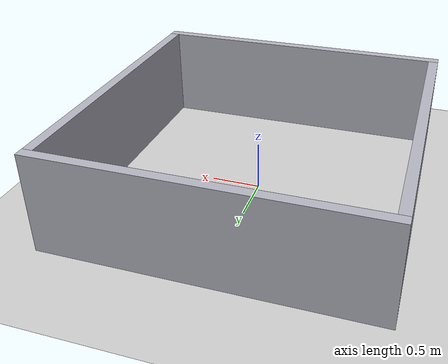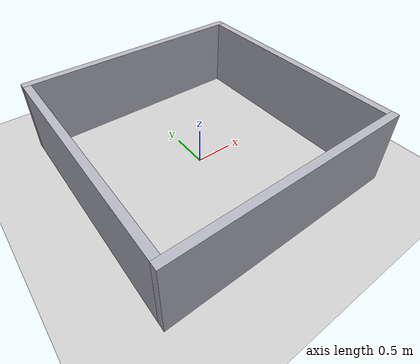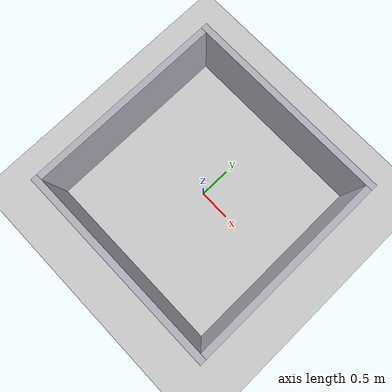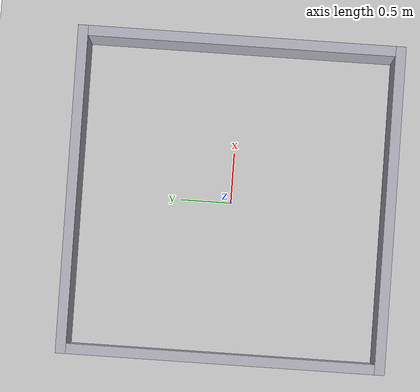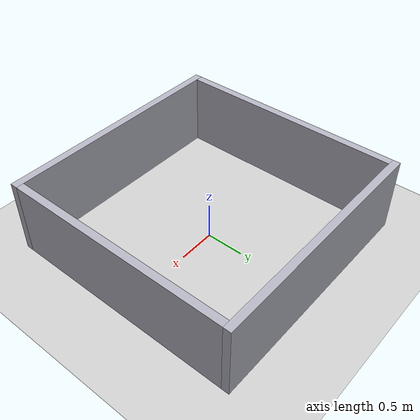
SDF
<?xml version='1.0' encoding='utf-8'?>
<!-- Batterijtest: nagebootste kantoorruimte.
     De robot spawnt in de oorsprong (0, 0); bouw de ruimte daaromheen.
     Muren/meubels als statische modellen onder het kopje "Kantoorruimte". -->
<sdf version="1.9">
  <world name="batterij_test">
    <physics name="1ms" type="ignored">
      <max_step_size>0.001</max_step_size>
      <real_time_factor>1</real_time_factor>
      <real_time_update_rate>1000</real_time_update_rate>
    </physics>
    <!-- Sensors is nodig voor de lidar van de robot -->
    <plugin filename="libignition-gazebo-sensors-system.so" name="ignition::gazebo::systems::Sensors">
      <render_engine>ogre2</render_engine>
    </plugin>
    <plugin name="gz::sim::systems::Physics" filename="ignition-gazebo-physics-system" />
    <plugin name="gz::sim::systems::UserCommands" filename="ignition-gazebo-user-commands-system" />
    <plugin name="gz::sim::systems::SceneBroadcaster" filename="ignition-gazebo-scene-broadcaster-system" />
    <plugin name="gz::sim::systems::Contact" filename="ignition-gazebo-contact-system" />

    <gravity>0 0 -9.8</gravity>
    <magnetic_field>6e-06 2.3e-05 -4.2e-05</magnetic_field>
    <atmosphere type="adiabatic" />
    <scene>
      <ambient>0.4 0.4 0.4 1</ambient>
      <background>0.7 0.7 0.7 1</background>
      <shadows>true</shadows>
    </scene>

    <light name="sun" type="directional">
      <pose>0 0 10 0 0 0</pose>
      <cast_shadows>true</cast_shadows>
      <intensity>1</intensity>
      <direction>-0.5 0.1 -0.9</direction>
      <diffuse>0.8 0.8 0.8 1</diffuse>
      <specular>0.2 0.2 0.2 1</specular>
    </light>

    <model name="ground_plane">
      <static>true</static>
      <link name="link">
        <collision name="collision">
          <geometry>
            <plane>
              <normal>0 0 1</normal>
              <size>10 10</size>
            </plane>
          </geometry>
        </collision>
        <visual name="visual">
          <geometry>
            <plane>
              <normal>0 0 1</normal>
              <size>10 10</size>
            </plane>
          </geometry>
          <material>
            <ambient>0.8 0.8 0.8 1</ambient>
            <diffuse>0.8 0.8 0.8 1</diffuse>
            <specular>0.8 0.8 0.8 1</specular>
          </material>
        </visual>
      </link>
    </model>

    <!-- ===== Kantoorruimte ===== -->

    <!-- Testruimte: 3 x 3 m vrije binnenruimte, midden op (0, 0) waar de
         robot spawnt. Muren 0,1 m dik en 1 m hoog; noord/zuid lopen door tot
         de buitenkant zodat de hoeken dicht zijn. -->
    <model name="testruimte">
      <static>true</static>
      <link name="muur_noord">
        <pose>0 1.55 0.5 0 0 0</pose>
        <collision name="collision">
          <geometry><box><size>3.2 0.1 1.0</size></box></geometry>
        </collision>
        <visual name="visual">
          <geometry><box><size>3.2 0.1 1.0</size></box></geometry>
          <material>
            <ambient>0.5 0.5 0.55 1</ambient>
            <diffuse>0.7 0.7 0.75 1</diffuse>
          </material>
        </visual>
      </link>
      <link name="muur_zuid">
        <pose>0 -1.55 0.5 0 0 0</pose>
        <collision name="collision">
          <geometry><box><size>3.2 0.1 1.0</size></box></geometry>
        </collision>
        <visual name="visual">
          <geometry><box><size>3.2 0.1 1.0</size></box></geometry>
          <material>
            <ambient>0.5 0.5 0.55 1</ambient>
            <diffuse>0.7 0.7 0.75 1</diffuse>
          </material>
        </visual>
      </link>
      <link name="muur_oost">
        <pose>1.55 0 0.5 0 0 0</pose>
        <collision name="collision">
          <geometry><box><size>0.1 3.0 1.0</size></box></geometry>
        </collision>
        <visual name="visual">
          <geometry><box><size>0.1 3.0 1.0</size></box></geometry>
          <material>
            <ambient>0.5 0.5 0.55 1</ambient>
            <diffuse>0.7 0.7 0.75 1</diffuse>
          </material>
        </visual>
      </link>
      <link name="muur_west">
        <pose>-1.55 0 0.5 0 0 0</pose>
        <collision name="collision">
          <geometry><box><size>0.1 3.0 1.0</size></box></geometry>
        </collision>
        <visual name="visual">
          <geometry><box><size>0.1 3.0 1.0</size></box></geometry>
          <material>
            <ambient>0.5 0.5 0.55 1</ambient>
            <diffuse>0.7 0.7 0.75 1</diffuse>
          </material>
        </visual>
      </link>
    </model>

  </world>
</sdf>
